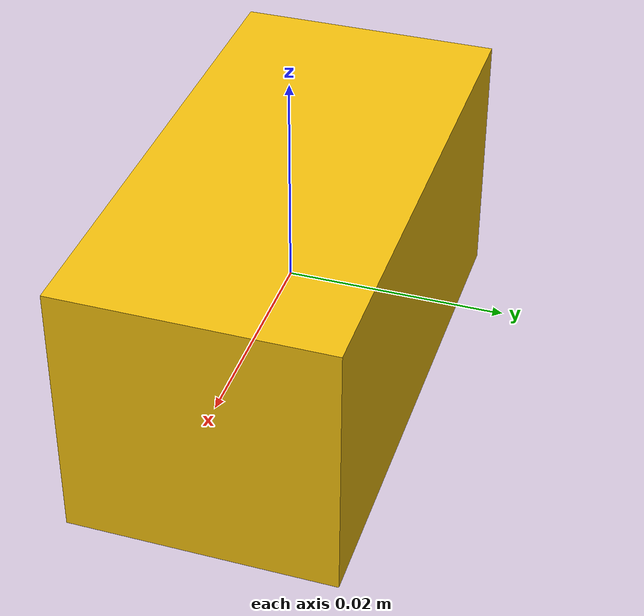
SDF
<?xml version="1.0"?>
<sdf version="1.9">
  <model name="m8_rect_box_2x1">
    <static>false</static>
    <link name="body">
      <inertial><mass>0.030</mass><inertia><ixx>0.000004</ixx><iyy>0.000004</iyy><izz>0.000004</izz></inertia></inertial>
      <visual name="visual"><geometry><box><size>0.050 0.025 0.025</size></box></geometry><material><ambient>0.95 0.75 0.05 1</ambient><diffuse>0.95 0.75 0.05 1</diffuse></material></visual>
      <collision name="collision"><geometry><box><size>0.050 0.025 0.025</size></box></geometry><surface><friction><ode><mu>1.5</mu><mu2>1.5</mu2></ode></friction><contact><ode><kp>1000000.0</kp><kd>10.0</kd></ode></contact></surface></collision>
    </link>
  </model>
</sdf>
